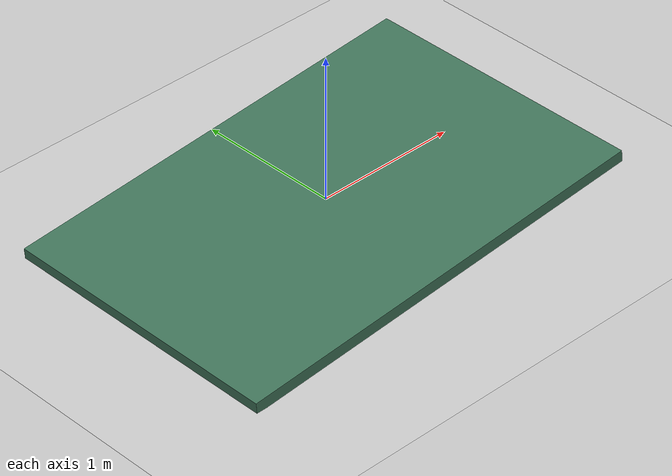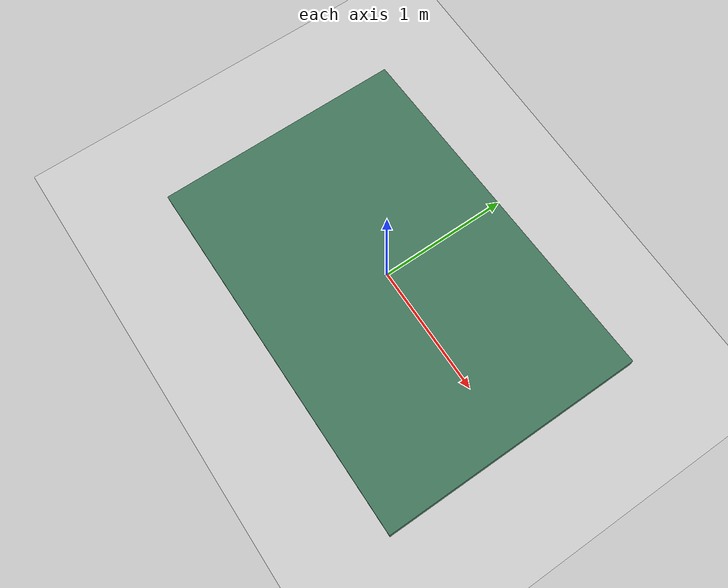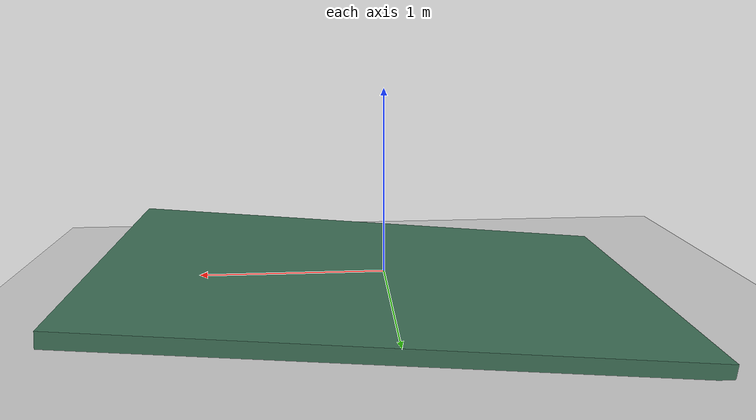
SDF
<?xml version="1.0" ?>

<sdf version="1.9">

  <world name="raptor_world">
    <plugin filename="gz-sim-physics-system" name="gz::sim::systems::Physics"/>
    <plugin filename="gz-sim-user-commands-system" name="gz::sim::systems::UserCommands"/>
    <plugin filename="gz-sim-scene-broadcaster-system" name="gz::sim::systems::SceneBroadcaster"/>
    <plugin filename="gz-sim-imu-system" name="gz::sim::systems::Imu"/>
    <plugin filename="gz-sim-contact-system" name="gz::sim::systems::Contact"/>
    <plugin filename="gz-sim-sensors-system" name="gz::sim::systems::Sensors">
      <render_engine>ogre2</render_engine>
    </plugin>

    <!-- 중력 -->
    <gravity>0 0 -9.81</gravity>

    <!-- 물리 엔진 -->
    <physics name="default_physics" type="ignored">
      <max_step_size>0.001</max_step_size>
      <real_time_factor>1.0</real_time_factor>
    </physics>

    <light type="directional" name="sun">
      <cast_shadows>true</cast_shadows>

      <pose>
        0 0 10 0 0 0
      </pose>

      <diffuse>
        0.8 0.8 0.8 1
      </diffuse>

      <specular>
        0.2 0.2 0.2 1
      </specular>

      <direction>
        -0.5 0.1 -0.9
      </direction>
    </light>

    <!-- 바닥 -->
    <model name="ground_plane">
      <pose>0 0 -0.2 0 0 0</pose>

      <static>true</static>

      <link name="link">

        <collision name="collision">

          <geometry>
            <plane>
              <normal>0 0 1</normal>
              <size>100 100</size>
            </plane>
          </geometry>

        </collision>

        <visual name="visual">

          <geometry>
            <plane>
              <normal>0 0 1</normal>
              <size>100 100</size>
            </plane>
          </geometry>

          <material>
            <ambient>0.8 0.8 0.8 1</ambient>
            <diffuse>0.8 0.8 0.8 1</diffuse>
          </material>

        </visual>

      </link>

    </model>

    <!-- Five-degree static support test; not a locomotion certification. -->
    <model name="slope_5deg"><static>true</static><pose>0 0 -0.039847787923669824 0 -0.08726646259971647 0</pose>
      <link name="ramp">
        <collision name="collision"><geometry><box><size>3 2 0.08</size></box></geometry></collision>
        <visual name="visual"><geometry><box><size>3 2 0.08</size></box></geometry>
          <material><ambient>0.25 0.45 0.35 1</ambient><diffuse>0.25 0.45 0.35 1</diffuse></material>
        </visual>
      </link>
    </model>
  </world>

</sdf>
